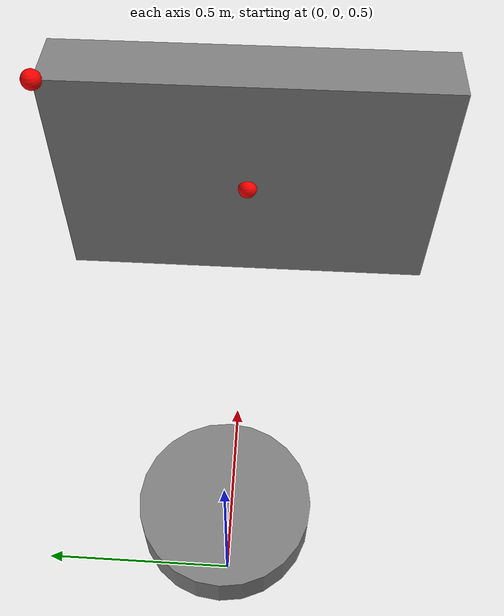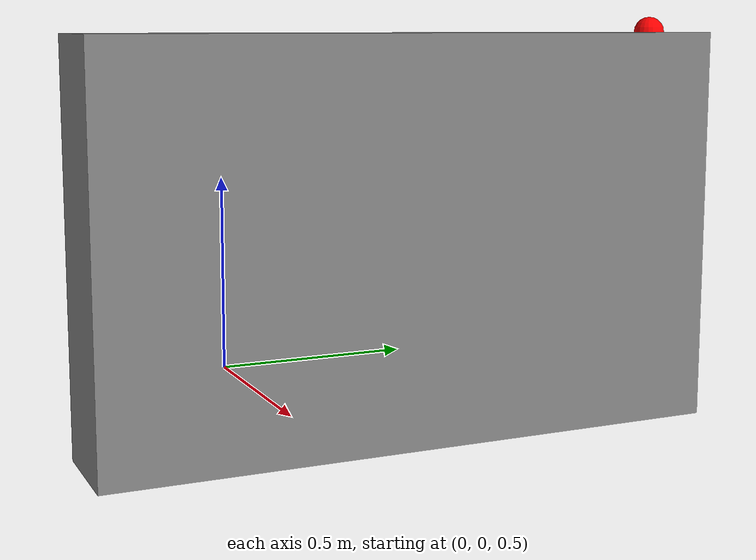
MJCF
<mujoco>
    <default>
      <site rgba="1 0 0 1" size="0.03"/>
    </default>
    <worldbody>
      <light pos="0 0 3"/>
      <body pos="1.1 0 1">
        <geom type="box" size=".1 .6 .375"/>
        <site name="frontorigin" pos="-.1  .6  .375"/>
        <site name="frontcenter" pos="-.1 0 0"/>
      </body>
      <body pos="0 0 0">
        <joint axis="0 0 1" range="-180 180" limited="false"/>
        <geom type="cylinder" size=".2 .05" pos="0 0 0.9"/>
        <camera pos="0 0 1" xyaxes="0 -1 0 0 0 1" fovy="41.11209"
                resolution="1920 1200" name="fixedcamera"/>
      </body>
    </worldbody>
    <sensor>
      <camprojection site="frontorigin" camera="fixedcamera"/>
      <camprojection site="frontcenter" camera="fixedcamera"/>
    </sensor>
  </mujoco>
